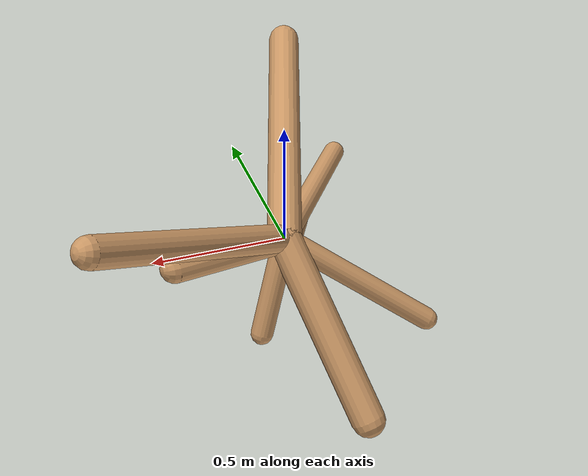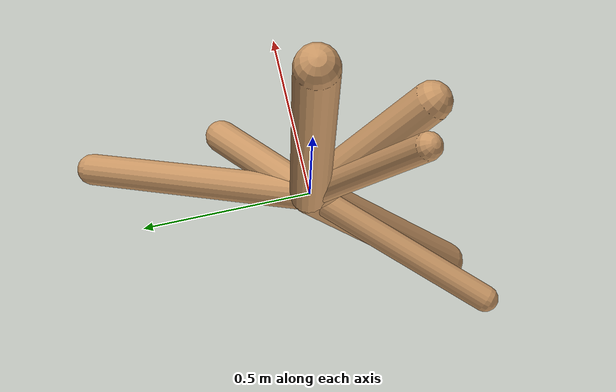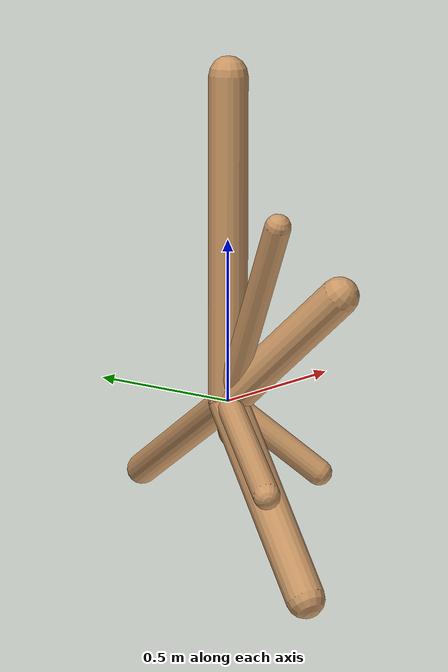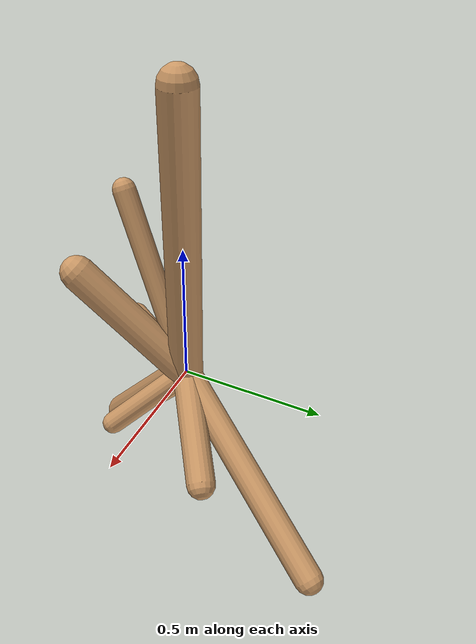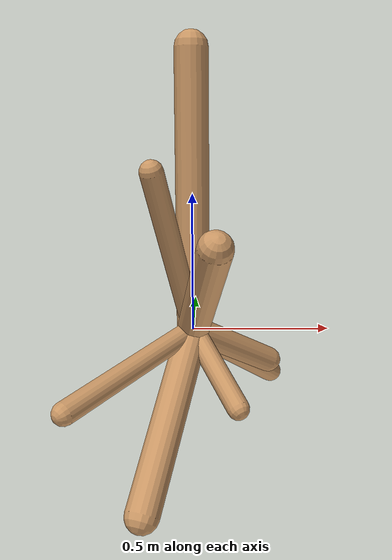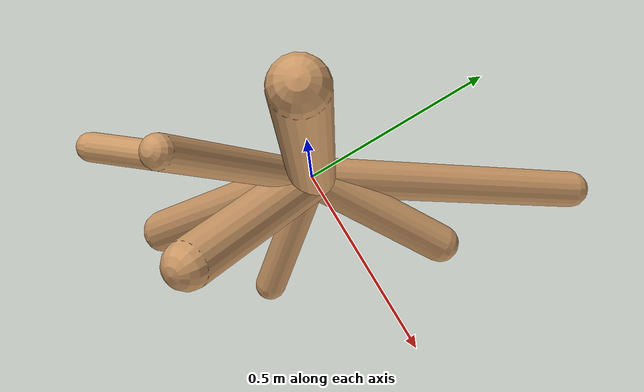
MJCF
<!--
                    joint_number: 7
                    -->
                    <mujoco model="randomrobot">
                        <compiler angle="degree" coordinate="global" inertiafromgeom="true"/>
                        <default>
                        <joint armature="0.01" damping=".1" limited="true"/>
                        <geom conaffinity="0" condim="3" contype="1" density="1000" friction="0.8 .1 .1" rgba="0.8 0.6 .4 1"/>
                        </default>
                        <option integrator="RK4" timestep="0.002"/>
                        <worldbody>
                    <body name='torso' pos='0.00 0.00 0.60'><geom fromto='0 0 0 0.00 0.00 1.00' name='torso_geom' size='0.06' type='capsule'/><inertial mass='0.3'/><body name='L0_D1' pos='0.00 0.00 0.37'><joint axis='1 0 0' name='L0_D1_joint' pos='0 0 0' range='149.84 174.58' type='hinge'/><geom fromto='0 0 0 0.08 -0.36 0.36' name='L0_D1_geom' size='0.06' type='capsule'/><inertial mass='0.3'/><body name='L1_D0' pos='0.00 -0.00 0.00'><joint axis='0 1 0' name='L1_D0_joint' pos='0 0 0' range='16.31 111.31' type='hinge'/><geom fromto='0 0 0 0.30 0.21 -0.19' name='L1_D0_geom' size='0.05' type='capsule'/><inertial mass='0.3'/></body></body><body name='L2_D1' pos='0.00 0.00 0.84'><joint axis='1 0 0' name='L2_D1_joint' pos='0 0 0' range='29.75 53.33' type='hinge'/><geom fromto='0 0 0 0.35 0.63 -0.39' name='L2_D1_geom' size='0.05' type='capsule'/><inertial mass='0.3'/></body><body name='L3_D1' pos='0.00 0.00 0.99'><joint axis='0 1 0' name='L3_D1_joint' pos='0 0 0' range='20.86 64.52' type='hinge'/><geom fromto='0 0 0 -0.16 -0.42 -0.51' name='L3_D1_geom' size='0.06' type='capsule'/><inertial mass='0.3'/><body name='L4_D0' pos='-0.14 -0.36 -0.43'><joint axis='0 1 0' name='L4_D0_joint' pos='0 0 0' range='85.00 159.70' type='hinge'/><geom fromto='0 0 0 -0.12 -0.28 0.59' name='L4_D0_geom' size='0.04' type='capsule'/><inertial mass='0.3'/></body><body name='L5_D0' pos='-0.16 -0.41 -0.49'><joint axis='0 0 1' name='L5_D0_joint' pos='0 0 0' range='19.96 79.08' type='hinge'/><geom fromto='0 0 0 -0.39 -0.45 -0.14' name='L5_D0_geom' size='0.04' type='capsule'/><inertial mass='0.3'/></body></body><body name='L6_D1' pos='0.00 0.00 0.90'><joint axis='0 0 1' name='L6_D1_joint' pos='0 0 0' range='1.25 91.93' type='hinge'/><geom fromto='0 0 0 0.16 -0.23 -0.22' name='L6_D1_geom' size='0.04' type='capsule'/><inertial mass='0.3'/></body></body>
                        </worldbody>
                    </mujoco>
